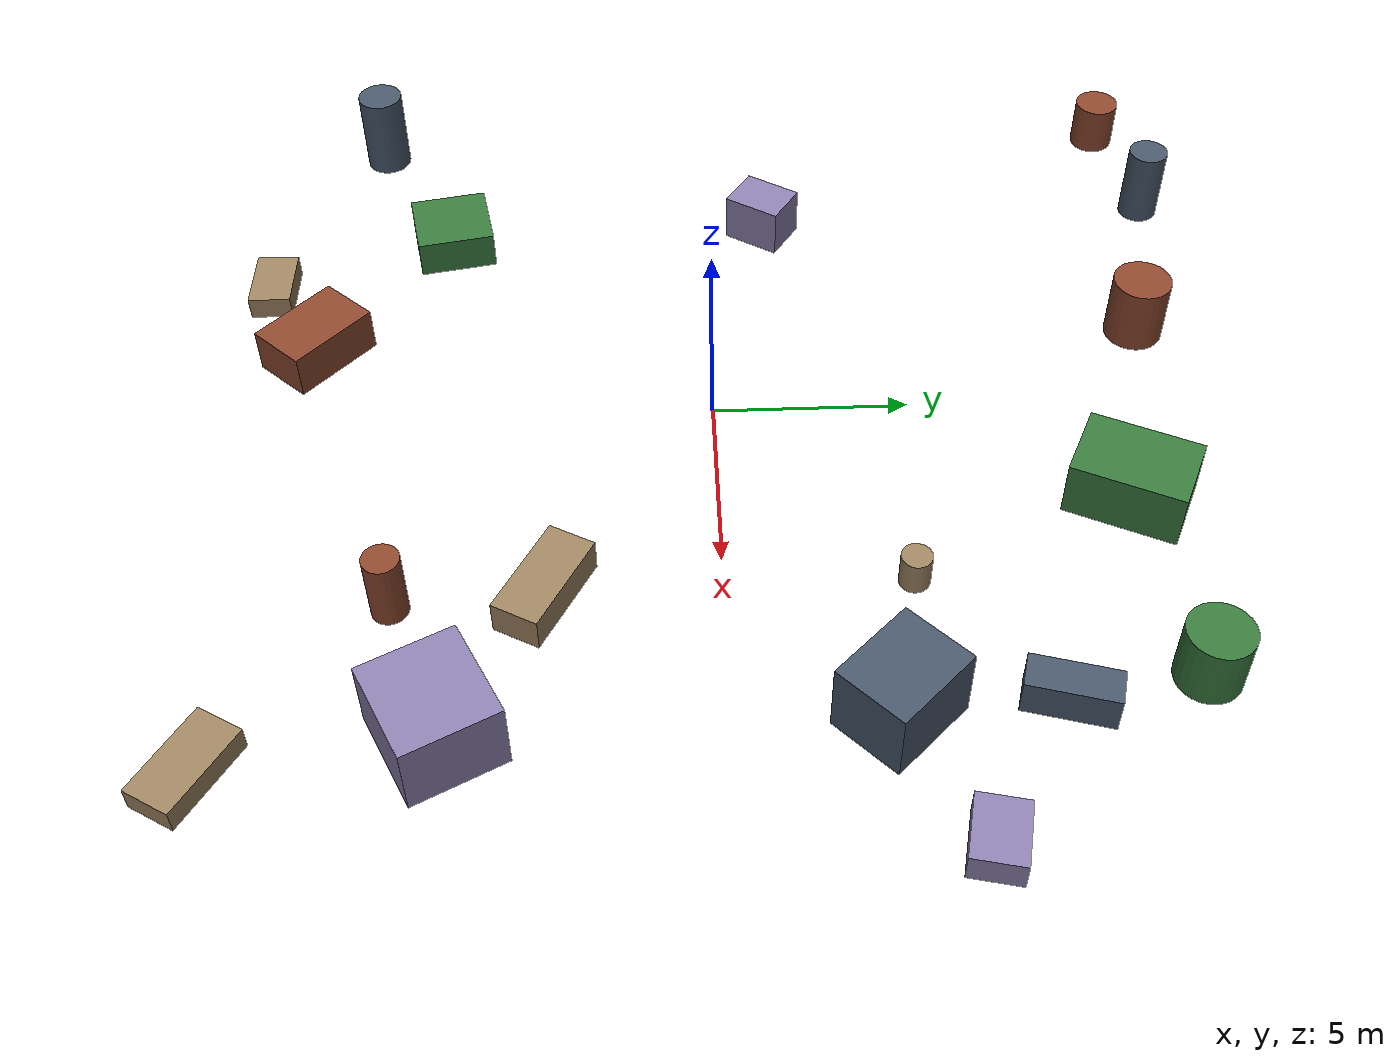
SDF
<sdf version="1.10">
 <world name="robotx_task1_uav_view">
  <gravity>0 0 -9.81</gravity>
  <physics name="physics" type="ode">
   <max_step_size>0.002</max_step_size>
   <real_time_factor>1.0</real_time_factor>
  </physics>
  <scene>
   <ambient>0.18 0.22 0.18 1.0</ambient>
   <background>0.35 0.55 0.40 1.0</background>
   <shadows>true</shadows>
   <grid>false</grid>
  </scene>
  <light name="sun" type="directional">
   <pose>0 0 300 0 0 0</pose>
   <diffuse>0.55 0.75 0.60 1.0</diffuse>
   <specular>0.28 0.45 0.32 1.0</specular>
   <direction>0.20 -0.06 -1.0</direction>
   <attenuation>
    <range>2500</range>
    <constant>0.85</constant>
    <linear>0.001</linear>
    <quadratic>0.00005</quadratic>
   </attenuation>
  </light>
  <plugin filename="gz-sim-physics-system" name="gz::sim::systems::Physics"/>
  <plugin filename="gz-sim-user-commands-system" name="gz::sim::systems::UserCommands"/>
  <plugin filename="gz-sim-scene-broadcaster-system" name="gz::sim::systems::SceneBroadcaster"/>
  <plugin filename="gz-sim-sensors-system" name="gz::sim::systems::Sensors">
   <render_engine>ogre2</render_engine>
  </plugin>
  <model name="scene_clutter_box_000">
   <static>true</static>
   <pose>10.407 -11.470 0.318 0 0 1.029898</pose>
   <link name="link">
    <visual name="v">
     <geometry><box><size>1.210 2.353 0.596</size></box></geometry>
     <material><ambient>0.45 0.38 0.32 1.0</ambient><diffuse>0.62 0.52 0.38 1.0</diffuse></material>
    </visual>
   </link>
  </model>
  <model name="scene_clutter_cyl_001">
   <static>true</static>
   <pose>-7.710 12.665 1.087 0 0 1.611853</pose>
   <link name="link">
    <visual name="v">
     <geometry><cylinder><radius>0.529</radius><length>2.074</length></cylinder></geometry>
     <material><ambient>0.18 0.22 0.28 1.0</ambient><diffuse>0.28 0.34 0.42 1.0</diffuse></material>
    </visual>
   </link>
  </model>
  <model name="scene_clutter_cyl_002">
   <static>true</static>
   <pose>-11.205 12.023 0.728 0 0 -1.364431</pose>
   <link name="link">
    <visual name="v">
     <geometry><cylinder><radius>0.597</radius><length>1.356</length></cylinder></geometry>
     <material><ambient>0.35 0.16 0.12 1.0</ambient><diffuse>0.55 0.28 0.18 1.0</diffuse></material>
    </visual>
   </link>
  </model>
  <model name="scene_clutter_box_003">
   <static>true</static>
   <pose>3.522 9.951 0.757 0 0 1.109273</pose>
   <link name="link">
    <visual name="v">
     <geometry><box><size>2.826 2.006 1.475</size></box></geometry>
     <material><ambient>0.12 0.30 0.14 1.0</ambient><diffuse>0.22 0.48 0.24 1.0</diffuse></material>
    </visual>
   </link>
  </model>
  <model name="scene_clutter_box_004">
   <static>true</static>
   <pose>12.913 5.205 0.383 0 0 2.911618</pose>
   <link name="link">
    <visual name="v">
     <geometry><box><size>1.570 1.218 0.726</size></box></geometry>
     <material><ambient>0.40 0.35 0.50 1.0</ambient><diffuse>0.55 0.50 0.68 1.0</diffuse></material>
    </visual>
   </link>
  </model>
  <model name="scene_clutter_box_005">
   <static>true</static>
   <pose>-5.097 -11.736 0.321 0 0 -1.580840</pose>
   <link name="link">
    <visual name="v">
     <geometry><box><size>1.108 1.795 0.602</size></box></geometry>
     <material><ambient>0.45 0.38 0.32 1.0</ambient><diffuse>0.62 0.52 0.38 1.0</diffuse></material>
    </visual>
   </link>
  </model>
  <model name="scene_clutter_box_006">
   <static>true</static>
   <pose>9.589 3.611 0.933 0 0 -0.808278</pose>
   <link name="link">
    <visual name="v">
     <geometry><box><size>2.349 1.911 1.827</size></box></geometry>
     <material><ambient>0.18 0.22 0.28 1.0</ambient><diffuse>0.28 0.34 0.42 1.0</diffuse></material>
    </visual>
   </link>
  </model>
  <model name="scene_clutter_box_007">
   <static>true</static>
   <pose>-2.559 -10.280 0.603 0 0 0.825538</pose>
   <link name="link">
    <visual name="v">
     <geometry><box><size>1.643 2.489 1.167</size></box></geometry>
     <material><ambient>0.35 0.16 0.12 1.0</ambient><diffuse>0.55 0.28 0.18 1.0</diffuse></material>
    </visual>
   </link>
  </model>
  <model name="scene_clutter_box_008">
   <static>true</static>
   <pose>-6.968 -6.982 0.517 0 0 -1.388274</pose>
   <link name="link">
    <visual name="v">
     <geometry><box><size>2.059 2.022 0.994</size></box></geometry>
     <material><ambient>0.12 0.30 0.14 1.0</ambient><diffuse>0.22 0.48 0.24 1.0</diffuse></material>
    </visual>
   </link>
  </model>
  <model name="scene_clutter_box_009">
   <static>true</static>
   <pose>9.747 -6.329 0.918 0 0 0.466894</pose>
   <link name="link">
    <visual name="v">
     <geometry><box><size>2.542 2.347 1.796</size></box></geometry>
     <material><ambient>0.40 0.35 0.50 1.0</ambient><diffuse>0.55 0.50 0.68 1.0</diffuse></material>
    </visual>
   </link>
  </model>
  <model name="scene_clutter_cyl_010">
   <static>true</static>
   <pose>5.867 4.418 0.491 0 0 -1.835407</pose>
   <link name="link">
    <visual name="v">
     <geometry><cylinder><radius>0.373</radius><length>0.882</length></cylinder></geometry>
     <material><ambient>0.45 0.38 0.32 1.0</ambient><diffuse>0.62 0.52 0.38 1.0</diffuse></material>
    </visual>
   </link>
  </model>
  <model name="scene_clutter_cyl_011">
   <static>true</static>
   <pose>-11.143 -9.194 1.197 0 0 0.082394</pose>
   <link name="link">
    <visual name="v">
     <geometry><cylinder><radius>0.612</radius><length>2.294</length></cylinder></geometry>
     <material><ambient>0.18 0.22 0.28 1.0</ambient><diffuse>0.28 0.34 0.42 1.0</diffuse></material>
    </visual>
   </link>
  </model>
  <model name="scene_clutter_cyl_012">
   <static>true</static>
   <pose>-2.494 11.370 0.941 0 0 -0.301335</pose>
   <link name="link">
    <visual name="v">
     <geometry><cylinder><radius>0.758</radius><length>1.782</length></cylinder></geometry>
     <material><ambient>0.35 0.16 0.12 1.0</ambient><diffuse>0.55 0.28 0.18 1.0</diffuse></material>
    </visual>
   </link>
  </model>
  <model name="scene_clutter_cyl_013">
   <static>true</static>
   <pose>8.874 10.529 0.845 0 0 1.413079</pose>
   <link name="link">
    <visual name="v">
     <geometry><cylinder><radius>0.787</radius><length>1.591</length></cylinder></geometry>
     <material><ambient>0.12 0.30 0.14 1.0</ambient><diffuse>0.22 0.48 0.24 1.0</diffuse></material>
    </visual>
   </link>
  </model>
  <model name="scene_clutter_box_014">
   <static>true</static>
   <pose>-7.228 1.723 0.673 0 0 0.988284</pose>
   <link name="link">
    <visual name="v">
     <geometry><box><size>1.570 1.256 1.306</size></box></geometry>
     <material><ambient>0.40 0.35 0.50 1.0</ambient><diffuse>0.55 0.50 0.68 1.0</diffuse></material>
    </visual>
   </link>
  </model>
  <model name="scene_clutter_box_015">
   <static>true</static>
   <pose>5.944 -4.105 0.447 0 0 -0.504626</pose>
   <link name="link">
    <visual name="v">
     <geometry><box><size>2.649 1.209 0.854</size></box></geometry>
     <material><ambient>0.45 0.38 0.32 1.0</ambient><diffuse>0.62 0.52 0.38 1.0</diffuse></material>
    </visual>
   </link>
  </model>
  <model name="scene_clutter_box_016">
   <static>true</static>
   <pose>9.453 7.351 0.483 0 0 1.286211</pose>
   <link name="link">
    <visual name="v">
     <geometry><box><size>2.127 0.874 0.925</size></box></geometry>
     <material><ambient>0.18 0.22 0.28 1.0</ambient><diffuse>0.28 0.34 0.42 1.0</diffuse></material>
    </visual>
   </link>
  </model>
  <model name="scene_clutter_cyl_017">
   <static>true</static>
   <pose>6.167 -7.632 0.943 0 0 -0.043233</pose>
   <link name="link">
    <visual name="v">
     <geometry><cylinder><radius>0.441</radius><length>1.785</length></cylinder></geometry>
     <material><ambient>0.35 0.16 0.12 1.0</ambient><diffuse>0.55 0.28 0.18 1.0</diffuse></material>
    </visual>
   </link>
  </model>
  <model name="uav_dataset_camera">
   <static>false</static>
   <pose>0 0 26 0 0 0</pose>
   <plugin filename="librobotx_overhead_motion_plugin.dylib" name="robotx::OverheadMotionPlugin">
    <radius_x_m>8.45179</radius_x_m>
    <radius_y_m>7.45525</radius_y_m>
    <angular_speed_rad_s>0.057413</angular_speed_rad_s>
    <phase_rad>2.093264</phase_rad>
    <z_wobble_m>0.11509</z_wobble_m>
    <z_wobble_hz>0.05452</z_wobble_hz>
    <z_wobble_phase_rad>2.859276</z_wobble_phase_rad>
   </plugin>
   <link name="camera_link">
    <gravity>false</gravity>
    <sensor name="top_down_rgb" type="camera">
     <always_on>true</always_on>
     <update_rate>20</update_rate>
     <pose>0 0 0 0 1.57079632679 0</pose>
     <camera>
      <horizontal_fov>1.05</horizontal_fov>
      <image><width>1920</width><height>1080</height><format>R8G8B8</format></image>
      <clip><near>0.2</near><far>600</far></clip>
     </camera>
     <topic>/robotx/uav/camera/image_raw</topic>
     <visualize>true</visualize>
    </sensor>
   </link>
  </model>
 </world>
</sdf>
